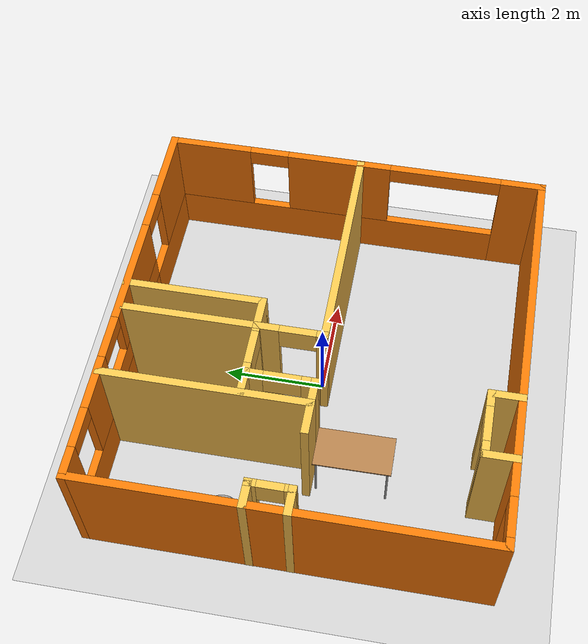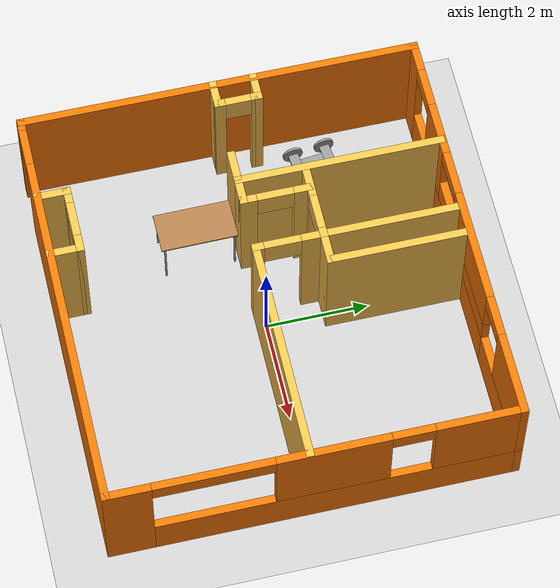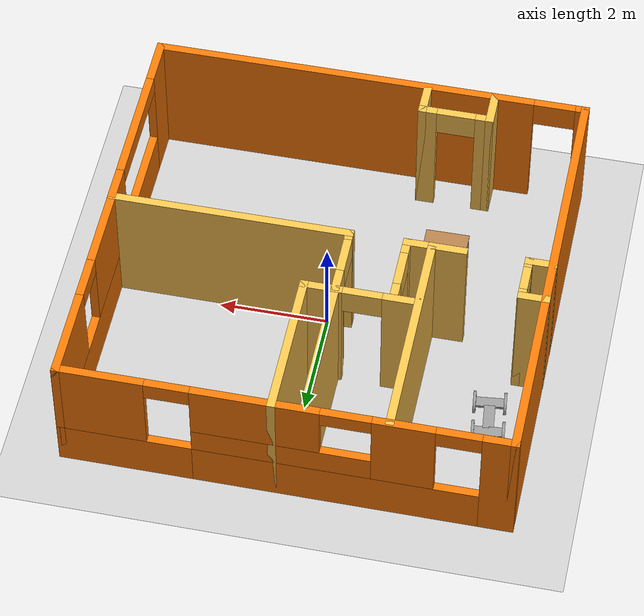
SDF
<sdf version="1.6">
 <world name="default">
  <model name="ground_plane">
   <static>1</static>
   <link name="link">
    <collision name="collision">
     <geometry><plane><normal>0 0 1</normal><size>100 100</size></plane></geometry>
     <surface><friction><ode><mu>100</mu><mu2>50</mu2></ode></friction></surface>
    </collision>
    <visual name="visual">
     <cast_shadows>0</cast_shadows>
     <geometry><plane><normal>0 0 1</normal><size>100 100</size></plane></geometry>
     <material>
      <script><uri>file://media/materials/scripts/gazebo.material</uri><name>Gazebo/Grey</name></script>
     </material>
    </visual>
   </link>
  </model>
  <model name="apartment2">
   <pose>-0.038299 0.0001 0 0 -0 0</pose>
   <link name="Wall_0">
    <pose>0.0015 3.8495 0 0 -0 0</pose>
    <visual name="Wall_0_Visual_0">
     <pose>-3.74544 0 1.25 0 -0 0</pose>
     <geometry><box><size>0.63713 0.15 2.5</size></box></geometry>
     <material>
      <script><uri>file://media/materials/scripts/gazebo.material</uri><name>Gazebo/Grey</name></script>
      <ambient>0.996078 0.47451 0.0196078 1</ambient>
     </material>
     <meta><layer>0</layer></meta>
    </visual>
    <collision name="Wall_0_Collision_0">
     <geometry><box><size>0.63713 0.15 2.5</size></box></geometry>
     <pose>-3.74544 0 1.25 0 -0 0</pose>
    </collision>
    <visual name="Wall_0_Visual_1">
     <pose>-0.89256 0 0.4445 0 -0 0</pose>
     <geometry><box><size>5.06862 0.15 0.889</size></box></geometry>
     <material>
      <script><uri>file://media/materials/scripts/gazebo.material</uri><name>Gazebo/Grey</name></script>
      <ambient>0.996078 0.47451 0.0196078 1</ambient>
     </material>
     <meta><layer>0</layer></meta>
    </visual>
    <collision name="Wall_0_Collision_1">
     <geometry><box><size>5.06862 0.15 0.889</size></box></geometry>
     <pose>-0.89256 0 0.4445 0 -0 0</pose>
    </collision>
    <visual name="Wall_0_Visual_2">
     <pose>2.85288 0 0.4445 0 -0 0</pose>
     <geometry><box><size>2.42225 0.15 0.889</size></box></geometry>
     <material>
      <script><uri>file://media/materials/scripts/gazebo.material</uri><name>Gazebo/Grey</name></script>
      <ambient>0.996078 0.47451 0.0196078 1</ambient>
     </material>
     <meta><layer>0</layer></meta>
    </visual>
    <collision name="Wall_0_Collision_2">
     <geometry><box><size>2.42225 0.15 0.889</size></box></geometry>
     <pose>2.85288 0 0.4445 0 -0 0</pose>
    </collision>
    <visual name="Wall_0_Visual_3">
     <pose>3.25287 0 1.6945 0 -0 0</pose>
     <geometry><box><size>1.62225 0.15 1.611</size></box></geometry>
     <material>
      <script><uri>file://media/materials/scripts/gazebo.material</uri><name>Gazebo/Grey</name></script>
      <ambient>0.996078 0.47451 0.0196078 1</ambient>
     </material>
     <meta><layer>0</layer></meta>
    </visual>
    <collision name="Wall_0_Collision_3">
     <geometry><box><size>1.62225 0.15 1.611</size></box></geometry>
     <pose>3.25287 0 1.6945 0 -0 0</pose>
    </collision>
    <visual name="Wall_0_Visual_4">
     <pose>-2.07636 0 1.6945 0 -0 0</pose>
     <geometry><box><size>1.10102 0.15 1.611</size></box></geometry>
     <material>
      <script><uri>file://media/materials/scripts/gazebo.material</uri><name>Gazebo/Grey</name></script>
      <ambient>0.996078 0.47451 0.0196078 1</ambient>
     </material>
     <meta><layer>0</layer></meta>
    </visual>
    <collision name="Wall_0_Collision_4">
     <geometry><box><size>1.10102 0.15 1.611</size></box></geometry>
     <pose>-2.07636 0 1.6945 0 -0 0</pose>
    </collision>
    <visual name="Wall_0_Visual_5">
     <pose>-2.07636 0 1.6945 0 -0 0</pose>
     <geometry><box><size>1.10102 0.15 1.611</size></box></geometry>
     <material>
      <script><uri>file://media/materials/scripts/gazebo.material</uri><name>Gazebo/Grey</name></script>
      <ambient>0.996078 0.47451 0.0196078 1</ambient>
     </material>
     <meta><layer>0</layer></meta>
    </visual>
    <collision name="Wall_0_Collision_5">
     <geometry><box><size>1.10102 0.15 1.611</size></box></geometry>
     <pose>-2.07636 0 1.6945 0 -0 0</pose>
    </collision>
    <visual name="Wall_0_Visual_6">
     <pose>0.057948 0 1.1445 0 -0 0</pose>
     <geometry><box><size>3.1676 0.15 0.511</size></box></geometry>
     <material>
      <script><uri>file://media/materials/scripts/gazebo.material</uri><name>Gazebo/Grey</name></script>
      <ambient>0.996078 0.47451 0.0196078 1</ambient>
     </material>
     <meta><layer>0</layer></meta>
    </visual>
    <collision name="Wall_0_Collision_6">
     <geometry><box><size>3.1676 0.15 0.511</size></box></geometry>
     <pose>0.057948 0 1.1445 0 -0 0</pose>
    </collision>
    <visual name="Wall_0_Visual_7">
     <pose>0.057948 0 1.1445 0 -0 0</pose>
     <geometry><box><size>3.1676 0.15 0.511</size></box></geometry>
     <material>
      <script><uri>file://media/materials/scripts/gazebo.material</uri><name>Gazebo/Grey</name></script>
      <ambient>0.996078 0.47451 0.0196078 1</ambient>
     </material>
     <meta><layer>0</layer></meta>
    </visual>
    <collision name="Wall_0_Collision_7">
     <geometry><box><size>3.1676 0.15 0.511</size></box></geometry>
     <pose>0.057948 0 1.1445 0 -0 0</pose>
    </collision>
    <visual name="Wall_0_Visual_8">
     <pose>0.507948 0 1.95 0 -0 0</pose>
     <geometry><box><size>2.2676 0.15 1.1</size></box></geometry>
     <material>
      <script><uri>file://media/materials/scripts/gazebo.material</uri><name>Gazebo/Grey</name></script>
      <ambient>0.996078 0.47451 0.0196078 1</ambient>
     </material>
     <meta><layer>0</layer></meta>
    </visual>
    <collision name="Wall_0_Collision_8">
     <geometry><box><size>2.2676 0.15 1.1</size></box></geometry>
     <pose>0.507948 0 1.95 0 -0 0</pose>
    </collision>
    <visual name="Wall_0_Visual_9">
     <pose>0.507948 0 1.95 0 -0 0</pose>
     <geometry><box><size>2.2676 0.15 1.1</size></box></geometry>
     <material>
      <script><uri>file://media/materials/scripts/gazebo.material</uri><name>Gazebo/Grey</name></script>
      <ambient>0.996078 0.47451 0.0196078 1</ambient>
     </material>
     <meta><layer>0</layer></meta>
    </visual>
    <collision name="Wall_0_Collision_9">
     <geometry><box><size>2.2676 0.15 1.1</size></box></geometry>
     <pose>0.507948 0 1.95 0 -0 0</pose>
    </collision>
    <visual name="Wall_0_Visual_10">
     <pose>2.04175 0 2.3295 0 -0 0</pose>
     <geometry><box><size>0.8 0.15 0.341</size></box></geometry>
     <material>
      <script><uri>file://media/materials/scripts/gazebo.material</uri><name>Gazebo/Grey</name></script>
      <ambient>0.996078 0.47451 0.0196078 1</ambient>
     </material>
     <meta><layer>0</layer></meta>
    </visual>
    <collision name="Wall_0_Collision_10">
     <geometry><box><size>0.8 0.15 0.341</size></box></geometry>
     <pose>2.04175 0 2.3295 0 -0 0</pose>
    </collision>
    <visual name="Wall_0_Visual_11">
     <pose>2.04175 0 2.3295 0 -0 0</pose>
     <geometry><box><size>0.8 0.15 0.341</size></box></geometry>
     <material>
      <script><uri>file://media/materials/scripts/gazebo.material</uri><name>Gazebo/Grey</name></script>
      <ambient>0.996078 0.47451 0.0196078 1</ambient>
     </material>
     <meta><layer>0</layer></meta>
    </visual>
    <collision name="Wall_0_Collision_11">
     <geometry><box><size>0.8 0.15 0.341</size></box></geometry>
     <pose>2.04175 0 2.3295 0 -0 0</pose>
    </collision>
    <visual name="Wall_0_Visual_12">
     <pose>-3.02687 0 2.3295 0 -0 0</pose>
     <geometry><box><size>0.8 0.15 0.341</size></box></geometry>
     <material>
      <script><uri>file://media/materials/scripts/gazebo.material</uri><name>Gazebo/Grey</name></script>
      <ambient>0.996078 0.47451 0.0196078 1</ambient>
     </material>
     <meta><layer>0</layer></meta>
    </visual>
    <collision name="Wall_0_Collision_12">
     <geometry><box><size>0.8 0.15 0.341</size></box></geometry>
     <pose>-3.02687 0 2.3295 0 -0 0</pose>
    </collision>
    <visual name="Wall_0_Visual_13">
     <pose>-1.07585 0 2.35 0 -0 0</pose>
     <geometry><box><size>0.9 0.15 0.3</size></box></geometry>
     <material>
      <script><uri>file://media/materials/scripts/gazebo.material</uri><name>Gazebo/Grey</name></script>
      <ambient>0.996078 0.47451 0.0196078 1</ambient>
     </material>
     <meta><layer>0</layer></meta>
    </visual>
    <collision name="Wall_0_Collision_13">
     <geometry><box><size>0.9 0.15 0.3</size></box></geometry>
     <pose>-1.07585 0 2.35 0 -0 0</pose>
    </collision>
    <visual name="Wall_0_Visual_14">
     <pose>-1.07585 0 2.35 0 -0 0</pose>
     <geometry><box><size>0.9 0.15 0.3</size></box></geometry>
     <material>
      <script><uri>file://media/materials/scripts/gazebo.material</uri><name>Gazebo/Grey</name></script>
      <ambient>0.996078 0.47451 0.0196078 1</ambient>
     </material>
     <meta><layer>0</layer></meta>
    </visual>
    <collision name="Wall_0_Collision_14">
     <geometry><box><size>0.9 0.15 0.3</size></box></geometry>
     <pose>-1.07585 0 2.35 0 -0 0</pose>
    </collision>
   </link>
   <link name="Wall_12">
    <collision name="Wall_12_Collision">
     <geometry><box><size>4.47 0.15 2.5</size></box></geometry>
     <pose>0 0 1.25 0 -0 0</pose>
    </collision>
    <visual name="Wall_12_Visual">
     <pose>0 0 1.25 0 -0 0</pose>
     <geometry><box><size>4.47 0.15 2.5</size></box></geometry>
     <material>
      <script><uri>file://media/materials/scripts/gazebo.material</uri><name>Gazebo/Grey</name></script>
      <ambient>1 0.764706 0.305882 1</ambient>
     </material>
     <meta><layer>0</layer></meta>
    </visual>
    <pose>1.8145 -0.1125 0 0 -0 3.14159</pose>
   </link>
   <link name="Wall_14">
    <pose>-0.3455 1.8125 0 0 -0 1.5708</pose>
    <visual name="Wall_14_Visual_0">
     <pose>-1.88475 0 1.25 0 -0 0</pose>
     <geometry><box><size>0.230491 0.15 2.5</size></box></geometry>
     <material>
      <script><uri>file://media/materials/scripts/gazebo.material</uri><name>Gazebo/Grey</name></script>
      <ambient>1 0.764706 0.305882 1</ambient>
     </material>
     <meta><layer>0</layer></meta>
    </visual>
    <collision name="Wall_14_Collision_0">
     <geometry><box><size>0.230491 0.15 2.5</size></box></geometry>
     <pose>-1.88475 0 1.25 0 -0 0</pose>
    </collision>
    <visual name="Wall_14_Visual_1">
     <pose>0.470745 0 1.25 0 -0 0</pose>
     <geometry><box><size>3.05851 0.15 2.5</size></box></geometry>
     <material>
      <script><uri>file://media/materials/scripts/gazebo.material</uri><name>Gazebo/Grey</name></script>
      <ambient>1 0.764706 0.305882 1</ambient>
     </material>
     <meta><layer>0</layer></meta>
    </visual>
    <collision name="Wall_14_Collision_1">
     <geometry><box><size>3.05851 0.15 2.5</size></box></geometry>
     <pose>0.470745 0 1.25 0 -0 0</pose>
    </collision>
    <visual name="Wall_14_Visual_2">
     <pose>-1.41401 0 2.25 0 -0 0</pose>
     <geometry><box><size>0.711 0.15 0.5</size></box></geometry>
     <material>
      <script><uri>file://media/materials/scripts/gazebo.material</uri><name>Gazebo/Grey</name></script>
      <ambient>1 0.764706 0.305882 1</ambient>
     </material>
     <meta><layer>0</layer></meta>
    </visual>
    <collision name="Wall_14_Collision_2">
     <geometry><box><size>0.711 0.15 0.5</size></box></geometry>
     <pose>-1.41401 0 2.25 0 -0 0</pose>
    </collision>
   </link>
   <link name="Wall_16">
    <collision name="Wall_16_Collision">
     <geometry><box><size>4.08 0.15 2.5</size></box></geometry>
     <pose>0 0 1.25 0 -0 0</pose>
    </collision>
    <visual name="Wall_16_Visual">
     <pose>0 0 1.25 0 -0 0</pose>
     <geometry><box><size>4.08 0.15 2.5</size></box></geometry>
     <material>
      <script><uri>file://media/materials/scripts/gazebo.material</uri><name>Gazebo/Grey</name></script>
      <ambient>1 0.764706 0.305882 1</ambient>
     </material>
     <meta><layer>0</layer></meta>
    </visual>
    <pose>-1.8285 1.8525 0 0 0 -1.5708</pose>
   </link>
   <link name="Wall_18">
    <collision name="Wall_18_Collision">
     <geometry><box><size>0.711 0.15 2.5</size></box></geometry>
     <pose>0 0 1.25 0 -0 0</pose>
    </collision>
    <visual name="Wall_18_Visual">
     <pose>0 0 1.25 0 -0 0</pose>
     <geometry><box><size>0.711 0.15 2.5</size></box></geometry>
     <material>
      <script><uri>file://media/materials/scripts/gazebo.material</uri><name>Gazebo/Grey</name></script>
      <ambient>1 0.764706 0.305882 1</ambient>
     </material>
     <meta><layer>0</layer></meta>
    </visual>
    <pose>-2.109 -0.1125 0 0 -0 3.14159</pose>
   </link>
   <link name="Wall_2">
    <collision name="Wall_2_Collision">
     <geometry><box><size>7.849 0.15 2.5</size></box></geometry>
     <pose>0 0 1.25 0 -0 0</pose>
    </collision>
    <visual name="Wall_2_Visual">
     <pose>0 0 1.25 0 -0 0</pose>
     <geometry><box><size>7.849 0.15 2.5</size></box></geometry>
     <material>
      <script><uri>file://media/materials/scripts/gazebo.material</uri><name>Gazebo/Grey</name></script>
      <ambient>0.996078 0.47451 0.0196078 1</ambient>
     </material>
     <meta><layer>0</layer></meta>
    </visual>
    <pose>-3.9875 0 0 0 0 -1.5708</pose>
   </link>
   <link name="Wall_20">
    <collision name="Wall_20_Collision">
     <geometry><box><size>0.58 0.15 2.5</size></box></geometry>
     <pose>0 0 1.25 0 -0 0</pose>
    </collision>
    <visual name="Wall_20_Visual">
     <pose>0 0 1.25 0 -0 0</pose>
     <geometry><box><size>0.58 0.15 2.5</size></box></geometry>
     <material>
      <script><uri>file://media/materials/scripts/gazebo.material</uri><name>Gazebo/Grey</name></script>
      <ambient>1 0.764706 0.305882 1</ambient>
     </material>
     <meta><layer>0</layer></meta>
    </visual>
    <pose>-3.7755 -0.1125 0 0 -0 0</pose>
   </link>
   <link name="Wall_22">
    <pose>-3.5605 0.282 0 0 -0 1.5708</pose>
    <visual name="Wall_22_Visual_0">
     <pose>-0.361845 0 1.25 0 -0 0</pose>
     <geometry><box><size>0.21531 0.15 2.5</size></box></geometry>
     <material>
      <script><uri>file://media/materials/scripts/gazebo.material</uri><name>Gazebo/Grey</name></script>
      <ambient>1 0.764706 0.305882 1</ambient>
     </material>
     <meta><layer>0</layer></meta>
    </visual>
    <collision name="Wall_22_Collision_0">
     <geometry><box><size>0.21531 0.15 2.5</size></box></geometry>
     <pose>-0.361845 0 1.25 0 -0 0</pose>
    </collision>
    <visual name="Wall_22_Visual_1">
     <pose>0.357655 0 1.25 0 -0 0</pose>
     <geometry><box><size>0.22369 0.15 2.5</size></box></geometry>
     <material>
      <script><uri>file://media/materials/scripts/gazebo.material</uri><name>Gazebo/Grey</name></script>
      <ambient>1 0.764706 0.305882 1</ambient>
     </material>
     <meta><layer>0</layer></meta>
    </visual>
    <collision name="Wall_22_Collision_1">
     <geometry><box><size>0.22369 0.15 2.5</size></box></geometry>
     <pose>0.357655 0 1.25 0 -0 0</pose>
    </collision>
    <visual name="Wall_22_Visual_2">
     <pose>-0.00419 0 2.25 0 -0 0</pose>
     <geometry><box><size>0.5 0.15 0.5</size></box></geometry>
     <material>
      <script><uri>file://media/materials/scripts/gazebo.material</uri><name>Gazebo/Grey</name></script>
      <ambient>1 0.764706 0.305882 1</ambient>
     </material>
     <meta><layer>0</layer></meta>
    </visual>
    <collision name="Wall_22_Collision_2">
     <geometry><box><size>0.5 0.15 0.5</size></box></geometry>
     <pose>-0.00419 0 2.25 0 -0 0</pose>
    </collision>
   </link>
   <link name="Wall_24">
    <collision name="Wall_24_Collision">
     <geometry><box><size>0.58 0.15 2.5</size></box></geometry>
     <pose>0 0 1.25 0 -0 0</pose>
    </collision>
    <visual name="Wall_24_Visual">
     <pose>0 0 1.25 0 -0 0</pose>
     <geometry><box><size>0.58 0.15 2.5</size></box></geometry>
     <material>
      <script><uri>file://media/materials/scripts/gazebo.material</uri><name>Gazebo/Grey</name></script>
      <ambient>1 0.764706 0.305882 1</ambient>
     </material>
     <meta><layer>0</layer></meta>
    </visual>
    <pose>-3.7755 0.6765 0 0 -0 3.14159</pose>
   </link>
   <link name="Wall_26">
    <pose>-1.072 1.1825 0 0 -0 0</pose>
    <visual name="Wall_26_Visual_0">
     <pose>-0.458995 0 1.25 0 -0 0</pose>
     <geometry><box><size>0.685009 0.15 2.5</size></box></geometry>
     <material>
      <script><uri>file://media/materials/scripts/gazebo.material</uri><name>Gazebo/Grey</name></script>
      <ambient>1 0.764706 0.305882 1</ambient>
     </material>
     <meta><layer>0</layer></meta>
    </visual>
    <collision name="Wall_26_Collision_0">
     <geometry><box><size>0.685009 0.15 2.5</size></box></geometry>
     <pose>-0.458995 0 1.25 0 -0 0</pose>
    </collision>
    <visual name="Wall_26_Visual_1">
     <pose>0.698005 0 1.25 0 -0 0</pose>
     <geometry><box><size>0.206991 0.15 2.5</size></box></geometry>
     <material>
      <script><uri>file://media/materials/scripts/gazebo.material</uri><name>Gazebo/Grey</name></script>
      <ambient>1 0.764706 0.305882 1</ambient>
     </material>
     <meta><layer>0</layer></meta>
    </visual>
    <collision name="Wall_26_Collision_1">
     <geometry><box><size>0.206991 0.15 2.5</size></box></geometry>
     <pose>0.698005 0 1.25 0 -0 0</pose>
    </collision>
    <visual name="Wall_26_Visual_2">
     <pose>0.239009 0 2.25 0 -0 0</pose>
     <geometry><box><size>0.711 0.15 0.5</size></box></geometry>
     <material>
      <script><uri>file://media/materials/scripts/gazebo.material</uri><name>Gazebo/Grey</name></script>
      <ambient>1 0.764706 0.305882 1</ambient>
     </material>
     <meta><layer>0</layer></meta>
    </visual>
    <collision name="Wall_26_Collision_2">
     <geometry><box><size>0.711 0.15 0.5</size></box></geometry>
     <pose>0.239009 0 2.25 0 -0 0</pose>
    </collision>
   </link>
   <link name="Wall_39">
    <collision name="Wall_39_Collision">
     <geometry><box><size>0.711 0.15 2.5</size></box></geometry>
     <pose>0 0 1.25 0 -0 0</pose>
    </collision>
    <visual name="Wall_39_Visual">
     <pose>0 0 1.25 0 -0 0</pose>
     <geometry><box><size>0.711 0.15 2.5</size></box></geometry>
     <material>
      <script><uri>file://media/materials/scripts/gazebo.material</uri><name>Gazebo/Grey</name></script>
      <ambient>1 0.764706 0.305882 1</ambient>
     </material>
     <meta><layer>0</layer></meta>
    </visual>
    <pose>-0.065 1.1825 0 0 -0 0</pose>
   </link>
   <link name="Wall_4">
    <pose>0.0015 -3.8495 0 0 -0 0</pose>
    <visual name="Wall_4_Visual_0">
     <pose>-3.93707 0 1.25 0 -0 0</pose>
     <geometry><box><size>0.253859 0.15 2.5</size></box></geometry>
     <material>
      <script><uri>file://media/materials/scripts/gazebo.material</uri><name>Gazebo/Grey</name></script>
      <ambient>0.996078 0.47451 0.0196078 1</ambient>
     </material>
     <meta><layer>0</layer></meta>
    </visual>
    <collision name="Wall_4_Collision_0">
     <geometry><box><size>0.253859 0.15 2.5</size></box></geometry>
     <pose>-3.93707 0 1.25 0 -0 0</pose>
    </collision>
    <visual name="Wall_4_Visual_1">
     <pose>0.507929 0 1.25 0 -0 0</pose>
     <geometry><box><size>7.11214 0.15 2.5</size></box></geometry>
     <material>
      <script><uri>file://media/materials/scripts/gazebo.material</uri><name>Gazebo/Grey</name></script>
      <ambient>0.996078 0.47451 0.0196078 1</ambient>
     </material>
     <meta><layer>0</layer></meta>
    </visual>
    <collision name="Wall_4_Collision_1">
     <geometry><box><size>7.11214 0.15 2.5</size></box></geometry>
     <pose>0.507929 0 1.25 0 -0 0</pose>
    </collision>
    <visual name="Wall_4_Visual_2">
     <pose>-3.42914 0 2.25 0 -0 0</pose>
     <geometry><box><size>0.762 0.15 0.5</size></box></geometry>
     <material>
      <script><uri>file://media/materials/scripts/gazebo.material</uri><name>Gazebo/Grey</name></script>
      <ambient>0.996078 0.47451 0.0196078 1</ambient>
     </material>
     <meta><layer>0</layer></meta>
    </visual>
    <collision name="Wall_4_Collision_2">
     <geometry><box><size>0.762 0.15 0.5</size></box></geometry>
     <pose>-3.42914 0 2.25 0 -0 0</pose>
    </collision>
   </link>
   <link name="Wall_41">
    <collision name="Wall_41_Collision">
     <geometry><box><size>2.817 0.15 2.5</size></box></geometry>
     <pose>0 0 1.25 0 -0 0</pose>
    </collision>
    <visual name="Wall_41_Visual">
     <pose>0 0 1.25 0 -0 0</pose>
     <geometry><box><size>2.817 0.15 2.5</size></box></geometry>
     <material>
      <script><uri>file://media/materials/scripts/gazebo.material</uri><name>Gazebo/Grey</name></script>
      <ambient>1 0.764706 0.305882 1</ambient>
     </material>
     <meta><layer>0</layer></meta>
    </visual>
    <pose>0.2155 2.516 0 0 -0 1.5708</pose>
   </link>
   <link name="Wall_43">
    <collision name="Wall_43_Collision">
     <geometry><box><size>0.6 0.15 2.5</size></box></geometry>
     <pose>0 0 1.25 0 -0 0</pose>
    </collision>
    <visual name="Wall_43_Visual">
     <pose>0 0 1.25 0 -0 0</pose>
     <geometry><box><size>0.6 0.15 2.5</size></box></geometry>
     <material>
      <script><uri>file://media/materials/scripts/gazebo.material</uri><name>Gazebo/Grey</name></script>
      <ambient>1 0.764706 0.305882 1</ambient>
     </material>
     <meta><layer>0</layer></meta>
    </visual>
    <pose>-1.6035 -0.1125 0 0 -0 0</pose>
   </link>
   <link name="Wall_46">
    <pose>-1.3785 0.535 0 0 -0 1.5708</pose>
    <visual name="Wall_46_Visual_0">
     <pose>-0.556971 0 1.25 0 -0 0</pose>
     <geometry><box><size>0.331058 0.15 2.5</size></box></geometry>
     <material>
      <script><uri>file://media/materials/scripts/gazebo.material</uri><name>Gazebo/Grey</name></script>
      <ambient>1 0.764706 0.305882 1</ambient>
     </material>
     <meta><layer>0</layer></meta>
    </visual>
    <collision name="Wall_46_Collision_0">
     <geometry><box><size>0.331058 0.15 2.5</size></box></geometry>
     <pose>-0.556971 0 1.25 0 -0 0</pose>
    </collision>
    <visual name="Wall_46_Visual_1">
     <pose>0.521029 0 1.25 0 -0 0</pose>
     <geometry><box><size>0.402942 0.15 2.5</size></box></geometry>
     <material>
      <script><uri>file://media/materials/scripts/gazebo.material</uri><name>Gazebo/Grey</name></script>
      <ambient>1 0.764706 0.305882 1</ambient>
     </material>
     <meta><layer>0</layer></meta>
    </visual>
    <collision name="Wall_46_Collision_1">
     <geometry><box><size>0.402942 0.15 2.5</size></box></geometry>
     <pose>0.521029 0 1.25 0 -0 0</pose>
    </collision>
    <visual name="Wall_46_Visual_2">
     <pose>-0.035942 0 2.25 0 -0 0</pose>
     <geometry><box><size>0.711 0.15 0.5</size></box></geometry>
     <material>
      <script><uri>file://media/materials/scripts/gazebo.material</uri><name>Gazebo/Grey</name></script>
      <ambient>1 0.764706 0.305882 1</ambient>
     </material>
     <meta><layer>0</layer></meta>
    </visual>
    <collision name="Wall_46_Collision_2">
     <geometry><box><size>0.711 0.15 0.5</size></box></geometry>
     <pose>-0.035942 0 2.25 0 -0 0</pose>
    </collision>
   </link>
   <link name="Wall_51">
    <collision name="Wall_51_Collision">
     <geometry><box><size>0.711 0.15 2.5</size></box></geometry>
     <pose>0 0 1.25 0 -0 0</pose>
    </collision>
    <visual name="Wall_51_Visual">
     <pose>0 0 1.25 0 -0 0</pose>
     <geometry><box><size>0.711 0.15 2.5</size></box></geometry>
     <material>
      <script><uri>file://media/materials/scripts/gazebo.material</uri><name>Gazebo/Grey</name></script>
      <ambient>1 0.764706 0.305882 1</ambient>
     </material>
     <meta><layer>0</layer></meta>
    </visual>
    <pose>-2.3175 -3.565 0 0 -0 1.5708</pose>
   </link>
   <link name="Wall_53">
    <pose>-1.694 -3.2845 0 0 -0 0</pose>
    <visual name="Wall_53_Visual_0">
     <pose>-0.528937 0 1.25 0 -0 0</pose>
     <geometry><box><size>0.339126 0.15 2.5</size></box></geometry>
     <material>
      <script><uri>file://media/materials/scripts/gazebo.material</uri><name>Gazebo/Grey</name></script>
      <ambient>1 0.764706 0.305882 1</ambient>
     </material>
     <meta><layer>0</layer></meta>
    </visual>
    <collision name="Wall_53_Collision_0">
     <geometry><box><size>0.339126 0.15 2.5</size></box></geometry>
     <pose>-0.528937 0 1.25 0 -0 0</pose>
    </collision>
    <visual name="Wall_53_Visual_1">
     <pose>0.525063 0 1.25 0 -0 0</pose>
     <geometry><box><size>0.346874 0.15 2.5</size></box></geometry>
     <material>
      <script><uri>file://media/materials/scripts/gazebo.material</uri><name>Gazebo/Grey</name></script>
      <ambient>1 0.764706 0.305882 1</ambient>
     </material>
     <meta><layer>0</layer></meta>
    </visual>
    <collision name="Wall_53_Collision_1">
     <geometry><box><size>0.346874 0.15 2.5</size></box></geometry>
     <pose>0.525063 0 1.25 0 -0 0</pose>
    </collision>
    <visual name="Wall_53_Visual_2">
     <pose>-0.003874 0 2.25 0 -0 0</pose>
     <geometry><box><size>0.711 0.15 0.5</size></box></geometry>
     <material>
      <script><uri>file://media/materials/scripts/gazebo.material</uri><name>Gazebo/Grey</name></script>
      <ambient>1 0.764706 0.305882 1</ambient>
     </material>
     <meta><layer>0</layer></meta>
    </visual>
    <collision name="Wall_53_Collision_2">
     <geometry><box><size>0.711 0.15 0.5</size></box></geometry>
     <pose>-0.003874 0 2.25 0 -0 0</pose>
    </collision>
   </link>
   <link name="Wall_57">
    <collision name="Wall_57_Collision">
     <geometry><box><size>0.711 0.15 2.5</size></box></geometry>
     <pose>0 0 1.25 0 -0 0</pose>
    </collision>
    <visual name="Wall_57_Visual">
     <pose>0 0 1.25 0 -0 0</pose>
     <geometry><box><size>0.711 0.15 2.5</size></box></geometry>
     <material>
      <script><uri>file://media/materials/scripts/gazebo.material</uri><name>Gazebo/Grey</name></script>
      <ambient>1 0.764706 0.305882 1</ambient>
     </material>
     <meta><layer>0</layer></meta>
    </visual>
    <pose>-1.0705 -3.565 0 0 0 -1.5708</pose>
   </link>
   <link name="Wall_8">
    <pose>3.9905 0 0 0 -0 1.5708</pose>
    <visual name="Wall_8_Visual_0">
     <pose>-3.46767 0 1.25 0 -0 0</pose>
     <geometry><box><size>0.913657 0.15 2.5</size></box></geometry>
     <material>
      <script><uri>file://media/materials/scripts/gazebo.material</uri><name>Gazebo/Grey</name></script>
      <ambient>0.996078 0.47451 0.0196078 1</ambient>
     </material>
     <meta><layer>0</layer></meta>
    </visual>
    <collision name="Wall_8_Collision_0">
     <geometry><box><size>0.913657 0.15 2.5</size></box></geometry>
     <pose>-3.46767 0 1.25 0 -0 0</pose>
    </collision>
    <visual name="Wall_8_Visual_1">
     <pose>0.456829 0 0.4445 0 -0 0</pose>
     <geometry><box><size>6.93534 0.15 0.889</size></box></geometry>
     <material>
      <script><uri>file://media/materials/scripts/gazebo.material</uri><name>Gazebo/Grey</name></script>
      <ambient>0.996078 0.47451 0.0196078 1</ambient>
     </material>
     <meta><layer>0</layer></meta>
    </visual>
    <collision name="Wall_8_Collision_1">
     <geometry><box><size>6.93534 0.15 0.889</size></box></geometry>
     <pose>0.456829 0 0.4445 0 -0 0</pose>
    </collision>
    <visual name="Wall_8_Visual_2">
     <pose>0.334299 0 1.6945 0 -0 0</pose>
     <geometry><box><size>2.14428 0.15 1.611</size></box></geometry>
     <material>
      <script><uri>file://media/materials/scripts/gazebo.material</uri><name>Gazebo/Grey</name></script>
      <ambient>0.996078 0.47451 0.0196078 1</ambient>
     </material>
     <meta><layer>0</layer></meta>
    </visual>
    <collision name="Wall_8_Collision_2">
     <geometry><box><size>2.14428 0.15 1.611</size></box></geometry>
     <pose>0.334299 0 1.6945 0 -0 0</pose>
    </collision>
    <visual name="Wall_8_Visual_3">
     <pose>3.06547 0 1.6945 0 -0 0</pose>
     <geometry><box><size>1.71806 0.15 1.611</size></box></geometry>
     <material>
      <script><uri>file://media/materials/scripts/gazebo.material</uri><name>Gazebo/Grey</name></script>
      <ambient>0.996078 0.47451 0.0196078 1</ambient>
     </material>
     <meta><layer>0</layer></meta>
    </visual>
    <collision name="Wall_8_Collision_3">
     <geometry><box><size>1.71806 0.15 1.611</size></box></geometry>
     <pose>3.06547 0 1.6945 0 -0 0</pose>
    </collision>
    <visual name="Wall_8_Visual_4">
     <pose>-1.87434 0 2.3295 0 -0 0</pose>
     <geometry><box><size>2.273 0.15 0.341</size></box></geometry>
     <material>
      <script><uri>file://media/materials/scripts/gazebo.material</uri><name>Gazebo/Grey</name></script>
      <ambient>0.996078 0.47451 0.0196078 1</ambient>
     </material>
     <meta><layer>0</layer></meta>
    </visual>
    <collision name="Wall_8_Collision_4">
     <geometry><box><size>2.273 0.15 0.341</size></box></geometry>
     <pose>-1.87434 0 2.3295 0 -0 0</pose>
    </collision>
    <visual name="Wall_8_Visual_5">
     <pose>1.80644 0 2.3295 0 -0 0</pose>
     <geometry><box><size>0.8 0.15 0.341</size></box></geometry>
     <material>
      <script><uri>file://media/materials/scripts/gazebo.material</uri><name>Gazebo/Grey</name></script>
      <ambient>0.996078 0.47451 0.0196078 1</ambient>
     </material>
     <meta><layer>0</layer></meta>
    </visual>
    <collision name="Wall_8_Collision_5">
     <geometry><box><size>0.8 0.15 0.341</size></box></geometry>
     <pose>1.80644 0 2.3295 0 -0 0</pose>
    </collision>
   </link>
   <static>1</static>
  </model>
  <model name="rccar-no-friction">
   <link name="link_0">
    <pose>-0 0 0.2 0 -0 0</pose>
    <inertial>
     <mass>1</mass>
     <inertia>
      <ixx>0.166667</ixx>
      <ixy>0</ixy>
      <ixz>0</ixz>
      <iyy>0.166667</iyy>
      <iyz>0</iyz>
      <izz>0.166667</izz>
     </inertia>
    </inertial>
    <visual name="visual">
     <geometry><box><size>0.5 0.2 0.05</size></box></geometry>
     <material>
      <lighting>1</lighting>
      <script><uri>file://media/materials/scripts/gazebo.material</uri><name>Gazebo/Grey</name></script>
      <ambient>0.3 0.3 0.3 1</ambient>
      <diffuse>0.7 0.7 0.7 1</diffuse>
      <specular>0.01 0.01 0.01 1</specular>
      <emissive>0 0 0 1</emissive>
      <shader type="vertex"><normal_map>__default__</normal_map></shader>
     </material>
    </visual>
    <collision name="collision">
     <geometry><box><size>0.5 0.2 0.05</size></box></geometry>
     <surface>
      <friction>
       <ode><mu>1</mu><mu2>1</mu2><fdir1>0 0 0</fdir1><slip1>0</slip1><slip2>0</slip2></ode>
       <torsional>
        <coefficient>1</coefficient>
        <patch_radius>0</patch_radius>
        <surface_radius>0</surface_radius>
        <use_patch_radius>1</use_patch_radius>
        <ode><slip>0</slip></ode>
       </torsional>
      </friction>
      <bounce><restitution_coefficient>0</restitution_coefficient><threshold>1e+06</threshold></bounce>
      <contact>
       <collide_without_contact>0</collide_without_contact>
       <collide_without_contact_bitmask>1</collide_without_contact_bitmask>
       <collide_bitmask>1</collide_bitmask>
       <ode>
        <soft_cfm>0</soft_cfm>
        <soft_erp>0.2</soft_erp>
        <kp>1e+13</kp>
        <kd>1</kd>
        <max_vel>0.01</max_vel>
        <min_depth>0</min_depth>
       </ode>
       <bullet>
        <split_impulse>1</split_impulse>
        <split_impulse_penetration_threshold>-0.01</split_impulse_penetration_threshold>
        <soft_cfm>0</soft_cfm>
        <soft_erp>0.2</soft_erp>
        <kp>1e+13</kp>
        <kd>1</kd>
       </bullet>
      </contact>
     </surface>
    </collision>
   </link>
   <link name="link_0_0">
    <pose>-0 -0.322937 0.2 0 -0 0</pose>
    <inertial>
     <mass>1</mass>
     <inertia>
      <ixx>0.166667</ixx>
      <ixy>0</ixy>
      <ixz>0</ixz>
      <iyy>0.166667</iyy>
      <iyz>0</iyz>
      <izz>0.166667</izz>
     </inertia>
    </inertial>
    <visual name="visual">
     <geometry><box><size>0.2 0.5 0.05</size></box></geometry>
     <material>
      <lighting>1</lighting>
      <script><uri>file://media/materials/scripts/gazebo.material</uri><name>Gazebo/Grey</name></script>
      <ambient>0.3 0.3 0.3 1</ambient>
      <diffuse>0.7 0.7 0.7 1</diffuse>
      <specular>0.01 0.01 0.01 1</specular>
      <emissive>0 0 0 1</emissive>
      <shader type="vertex"><normal_map>__default__</normal_map></shader>
     </material>
    </visual>
    <collision name="collision">
     <geometry><box><size>0.2 0.5 0.05</size></box></geometry>
     <surface>
      <friction>
       <ode><mu>1</mu><mu2>1</mu2><fdir1>0 0 0</fdir1><slip1>0</slip1><slip2>0</slip2></ode>
       <torsional>
        <coefficient>1</coefficient>
        <patch_radius>0</patch_radius>
        <surface_radius>0</surface_radius>
        <use_patch_radius>1</use_patch_radius>
        <ode><slip>0</slip></ode>
       </torsional>
      </friction>
      <bounce><restitution_coefficient>0</restitution_coefficient><threshold>1e+06</threshold></bounce>
      <contact>
       <collide_without_contact>0</collide_without_contact>
       <collide_without_contact_bitmask>1</collide_without_contact_bitmask>
       <collide_bitmask>1</collide_bitmask>
       <ode>
        <soft_cfm>0</soft_cfm>
        <soft_erp>0.2</soft_erp>
        <kp>1e+13</kp>
        <kd>1</kd>
        <max_vel>0.01</max_vel>
        <min_depth>0</min_depth>
       </ode>
       <bullet>
        <split_impulse>1</split_impulse>
        <split_impulse_penetration_threshold>-0.01</split_impulse_penetration_threshold>
        <soft_cfm>0</soft_cfm>
        <soft_erp>0.2</soft_erp>
        <kp>1e+13</kp>
        <kd>1</kd>
       </bullet>
      </contact>
     </surface>
    </collision>
   </link>
   <link name="link_0_clone">
    <pose>0.002934 -0.646886 0.2 0 -0 0</pose>
    <inertial>
     <mass>1</mass>
     <inertia>
      <ixx>0.166667</ixx>
      <ixy>0</ixy>
      <ixz>0</ixz>
      <iyy>0.166667</iyy>
      <iyz>0</iyz>
      <izz>0.166667</izz>
     </inertia>
    </inertial>
    <visual name="visual">
     <geometry><box><size>0.5 0.2 0.05</size></box></geometry>
     <material>
      <lighting>1</lighting>
      <script><uri>file://media/materials/scripts/gazebo.material</uri><name>Gazebo/Grey</name></script>
      <ambient>0.3 0.3 0.3 1</ambient>
      <diffuse>0.7 0.7 0.7 1</diffuse>
      <specular>0.01 0.01 0.01 1</specular>
      <emissive>0 0 0 1</emissive>
      <shader type="vertex"><normal_map>__default__</normal_map></shader>
     </material>
    </visual>
    <collision name="collision">
     <geometry><box><size>0.5 0.2 0.05</size></box></geometry>
     <surface>
      <friction>
       <ode><mu>1</mu><mu2>1</mu2><fdir1>0 0 0</fdir1><slip1>0</slip1><slip2>0</slip2></ode>
       <torsional>
        <coefficient>1</coefficient>
        <patch_radius>0</patch_radius>
        <surface_radius>0</surface_radius>
        <use_patch_radius>1</use_patch_radius>
        <ode><slip>0</slip></ode>
       </torsional>
      </friction>
      <bounce><restitution_coefficient>0</restitution_coefficient><threshold>1e+06</threshold></bounce>
      <contact>
       <collide_without_contact>0</collide_without_contact>
       <collide_without_contact_bitmask>1</collide_without_contact_bitmask>
       <collide_bitmask>1</collide_bitmask>
       <ode>
        <soft_cfm>0</soft_cfm>
        <soft_erp>0.2</soft_erp>
        <kp>1e+13</kp>
        <kd>1</kd>
        <max_vel>0.01</max_vel>
        <min_depth>0</min_depth>
       </ode>
       <bullet>
        <split_impulse>1</split_impulse>
        <split_impulse_penetration_threshold>-0.01</split_impulse_penetration_threshold>
        <soft_cfm>0</soft_cfm>
        <soft_erp>0.2</soft_erp>
        <kp>1e+13</kp>
        <kd>1</kd>
       </bullet>
      </contact>
     </surface>
    </collision>
   </link>
   <link name="link_1">
    <pose>0.275001 -0 0.2 1.5708 -0 1.5708</pose>
    <inertial>
     <mass>1</mass>
     <inertia><ixx>0.145833</ixx><ixy>0</ixy><ixz>0</ixz><iyy>0.145833</iyy><iyz>0</iyz><izz>0.125</izz></inertia>
    </inertial>
    <visual name="visual">
     <geometry><cylinder><radius>0.2</radius><length>0.05</length></cylinder></geometry>
     <material>
      <lighting>1</lighting>
      <script><uri>file://media/materials/scripts/gazebo.material</uri><name>Gazebo/Grey</name></script>
      <ambient>0.3 0.3 0.3 1</ambient>
      <diffuse>0.7 0.7 0.7 1</diffuse>
      <specular>0.01 0.01 0.01 1</specular>
      <emissive>0 0 0 1</emissive>
      <shader type="vertex"><normal_map>__default__</normal_map></shader>
     </material>
    </visual>
    <collision name="collision">
     <geometry><cylinder><radius>0.2</radius><length>0.05</length></cylinder></geometry>
     <surface>
      <friction>
       <ode><mu>1</mu><mu2>1</mu2><fdir1>0 0 0</fdir1><slip1>0</slip1><slip2>0</slip2></ode>
       <torsional>
        <coefficient>1</coefficient>
        <patch_radius>0</patch_radius>
        <surface_radius>0</surface_radius>
        <use_patch_radius>1</use_patch_radius>
        <ode><slip>0</slip></ode>
       </torsional>
      </friction>
      <bounce><restitution_coefficient>0</restitution_coefficient><threshold>1e+06</threshold></bounce>
      <contact>
       <collide_without_contact>0</collide_without_contact>
       <collide_without_contact_bitmask>1</collide_without_contact_bitmask>
       <collide_bitmask>1</collide_bitmask>
       <ode>
        <soft_cfm>0</soft_cfm>
        <soft_erp>0.2</soft_erp>
        <kp>1e+13</kp>
        <kd>1</kd>
        <max_vel>0.01</max_vel>
        <min_depth>0</min_depth>
       </ode>
       <bullet>
        <split_impulse>1</split_impulse>
        <split_impulse_penetration_threshold>-0.01</split_impulse_penetration_threshold>
        <soft_cfm>0</soft_cfm>
        <soft_erp>0.2</soft_erp>
        <kp>1e+13</kp>
        <kd>1</kd>
       </bullet>
      </contact>
     </surface>
    </collision>
   </link>
   <link name="link_1_clone">
    <pose>-0.275001 0 0.2 -1.5708 0 1.5708</pose>
    <inertial>
     <mass>1</mass>
     <inertia><ixx>0.145833</ixx><ixy>0</ixy><ixz>0</ixz><iyy>0.145833</iyy><iyz>0</iyz><izz>0.125</izz></inertia>
    </inertial>
    <visual name="visual">
     <geometry><cylinder><radius>0.2</radius><length>0.05</length></cylinder></geometry>
     <material>
      <lighting>1</lighting>
      <script><uri>file://media/materials/scripts/gazebo.material</uri><name>Gazebo/Grey</name></script>
      <ambient>0.3 0.3 0.3 1</ambient>
      <diffuse>0.7 0.7 0.7 1</diffuse>
      <specular>0.01 0.01 0.01 1</specular>
      <emissive>0 0 0 1</emissive>
      <shader type="vertex"><normal_map>__default__</normal_map></shader>
     </material>
    </visual>
    <collision name="collision">
     <geometry><cylinder><radius>0.2</radius><length>0.05</length></cylinder></geometry>
     <surface>
      <friction>
       <ode><mu>1</mu><mu2>1</mu2><fdir1>0 0 0</fdir1><slip1>0</slip1><slip2>0</slip2></ode>
       <torsional>
        <coefficient>1</coefficient>
        <patch_radius>0</patch_radius>
        <surface_radius>0</surface_radius>
        <use_patch_radius>1</use_patch_radius>
        <ode><slip>0</slip></ode>
       </torsional>
      </friction>
      <bounce><restitution_coefficient>0</restitution_coefficient><threshold>1e+06</threshold></bounce>
      <contact>
       <collide_without_contact>0</collide_without_contact>
       <collide_without_contact_bitmask>1</collide_without_contact_bitmask>
       <collide_bitmask>1</collide_bitmask>
       <ode>
        <soft_cfm>0</soft_cfm>
        <soft_erp>0.2</soft_erp>
        <kp>1e+13</kp>
        <kd>1</kd>
        <max_vel>0.01</max_vel>
        <min_depth>0</min_depth>
       </ode>
       <bullet>
        <split_impulse>1</split_impulse>
        <split_impulse_penetration_threshold>-0.01</split_impulse_penetration_threshold>
        <soft_cfm>0</soft_cfm>
        <soft_erp>0.2</soft_erp>
        <kp>1e+13</kp>
        <kd>1</kd>
       </bullet>
      </contact>
     </surface>
    </collision>
   </link>
   <link name="link_1_clone_clone">
    <pose>-0.272068 -0.646886 0.2 -1.5708 0 1.5708</pose>
    <inertial>
     <mass>1</mass>
     <inertia><ixx>0.145833</ixx><ixy>0</ixy><ixz>0</ixz><iyy>0.145833</iyy><iyz>0</iyz><izz>0.125</izz></inertia>
    </inertial>
    <visual name="visual">
     <geometry><cylinder><radius>0.2</radius><length>0.05</length></cylinder></geometry>
     <material>
      <lighting>1</lighting>
      <script><uri>file://media/materials/scripts/gazebo.material</uri><name>Gazebo/Grey</name></script>
      <ambient>0.3 0.3 0.3 1</ambient>
      <diffuse>0.7 0.7 0.7 1</diffuse>
      <specular>0.01 0.01 0.01 1</specular>
      <emissive>0 0 0 1</emissive>
      <shader type="vertex"><normal_map>__default__</normal_map></shader>
     </material>
    </visual>
    <collision name="collision">
     <geometry><cylinder><radius>0.2</radius><length>0.05</length></cylinder></geometry>
     <surface>
      <friction>
       <ode><mu>1</mu><mu2>1</mu2><fdir1>0 0 0</fdir1><slip1>0</slip1><slip2>0</slip2></ode>
       <torsional>
        <coefficient>1</coefficient>
        <patch_radius>0</patch_radius>
        <surface_radius>0</surface_radius>
        <use_patch_radius>1</use_patch_radius>
        <ode><slip>0</slip></ode>
       </torsional>
      </friction>
      <bounce><restitution_coefficient>0</restitution_coefficient><threshold>1e+06</threshold></bounce>
      <contact>
       <collide_without_contact>0</collide_without_contact>
       <collide_without_contact_bitmask>1</collide_without_contact_bitmask>
       <collide_bitmask>1</collide_bitmask>
       <ode>
        <soft_cfm>0</soft_cfm>
        <soft_erp>0.2</soft_erp>
        <kp>1e+13</kp>
        <kd>1</kd>
        <max_vel>0.01</max_vel>
        <min_depth>0</min_depth>
       </ode>
       <bullet>
        <split_impulse>1</split_impulse>
        <split_impulse_penetration_threshold>-0.01</split_impulse_penetration_threshold>
        <soft_cfm>0</soft_cfm>
        <soft_erp>0.2</soft_erp>
        <kp>1e+13</kp>
        <kd>1</kd>
       </bullet>
      </contact>
     </surface>
    </collision>
   </link>
   <link name="link_1_clone_clone_0">
    <pose>0.277936 -0.646886 0.2 -1.5708 0 1.5708</pose>
    <inertial>
     <mass>1</mass>
     <inertia><ixx>0.145833</ixx><ixy>0</ixy><ixz>0</ixz><iyy>0.145833</iyy><iyz>0</iyz><izz>0.125</izz></inertia>
    </inertial>
    <visual name="visual">
     <geometry><cylinder><radius>0.2</radius><length>0.05</length></cylinder></geometry>
     <material>
      <lighting>1</lighting>
      <script><uri>file://media/materials/scripts/gazebo.material</uri><name>Gazebo/Grey</name></script>
      <ambient>0.3 0.3 0.3 1</ambient>
      <diffuse>0.7 0.7 0.7 1</diffuse>
      <specular>0.01 0.01 0.01 1</specular>
      <emissive>0 0 0 1</emissive>
      <shader type="vertex"><normal_map>__default__</normal_map></shader>
     </material>
    </visual>
    <collision name="collision">
     <geometry><cylinder><radius>0.2</radius><length>0.05</length></cylinder></geometry>
     <surface>
      <friction>
       <ode><mu>1</mu><mu2>1</mu2><fdir1>0 0 0</fdir1><slip1>0</slip1><slip2>0</slip2></ode>
       <torsional>
        <coefficient>1</coefficient>
        <patch_radius>0</patch_radius>
        <surface_radius>0</surface_radius>
        <use_patch_radius>1</use_patch_radius>
        <ode><slip>0</slip></ode>
       </torsional>
      </friction>
      <bounce><restitution_coefficient>0</restitution_coefficient><threshold>1e+06</threshold></bounce>
      <contact>
       <collide_without_contact>0</collide_without_contact>
       <collide_without_contact_bitmask>1</collide_without_contact_bitmask>
       <collide_bitmask>1</collide_bitmask>
       <ode>
        <soft_cfm>0</soft_cfm>
        <soft_erp>0.2</soft_erp>
        <kp>1e+13</kp>
        <kd>1</kd>
        <max_vel>0.01</max_vel>
        <min_depth>0</min_depth>
       </ode>
       <bullet>
        <split_impulse>1</split_impulse>
        <split_impulse_penetration_threshold>-0.01</split_impulse_penetration_threshold>
        <soft_cfm>0</soft_cfm>
        <soft_erp>0.2</soft_erp>
        <kp>1e+13</kp>
        <kd>1</kd>
       </bullet>
      </contact>
     </surface>
    </collision>
   </link>
   <joint name="link_0_0_JOINT_2" type="fixed">
    <parent>link_0</parent>
    <child>link_0_0</child>
    <physics>
     <ode><limit><cfm>0</cfm><erp>0.2</erp></limit><suspension><cfm>0</cfm><erp>0.2</erp></suspension></ode>
    </physics>
   </joint>
   <joint name="link_0_0_JOINT_3" type="fixed">
    <parent>link_0_0</parent>
    <child>link_0_clone</child>
    <physics>
     <ode><limit><cfm>0</cfm><erp>0.2</erp></limit><suspension><cfm>0</cfm><erp>0.2</erp></suspension></ode>
    </physics>
   </joint>
   <joint name="link_0_JOINT_0" type="revolute">
    <parent>link_0</parent>
    <child>link_1</child>
    <axis>
     <xyz>0 0 1</xyz>
     <use_parent_model_frame>0</use_parent_model_frame>
     <limit>
      <lower>-1.79769e+308</lower>
      <upper>1.79769e+308</upper>
      <effort>-1</effort>
      <velocity>-1</velocity>
     </limit>
     <dynamics>
      <spring_reference>0</spring_reference>
      <spring_stiffness>0</spring_stiffness>
      <damping>0</damping>
      <friction>0</friction>
     </dynamics>
    </axis>
    <physics>
     <ode><limit><cfm>0</cfm><erp>0.2</erp></limit><suspension><cfm>0</cfm><erp>0.2</erp></suspension></ode>
    </physics>
   </joint>
   <joint name="link_0_JOINT_2" type="revolute">
    <parent>link_0</parent>
    <child>link_1_clone</child>
    <axis>
     <xyz>0 0 1</xyz>
     <use_parent_model_frame>0</use_parent_model_frame>
     <limit>
      <lower>-1.79769e+308</lower>
      <upper>1.79769e+308</upper>
      <effort>-1</effort>
      <velocity>-1</velocity>
     </limit>
     <dynamics>
      <spring_reference>0</spring_reference>
      <spring_stiffness>0</spring_stiffness>
      <damping>0</damping>
      <friction>0</friction>
     </dynamics>
    </axis>
    <physics>
     <ode><limit><cfm>0</cfm><erp>0.2</erp></limit><suspension><cfm>0</cfm><erp>0.2</erp></suspension></ode>
    </physics>
   </joint>
   <joint name="link_0_clone_JOINT_4" type="revolute">
    <parent>link_0_clone</parent>
    <child>link_1_clone_clone</child>
    <axis>
     <xyz>0 0 1</xyz>
     <use_parent_model_frame>0</use_parent_model_frame>
     <limit>
      <lower>-1.79769e+308</lower>
      <upper>1.79769e+308</upper>
      <effort>-1</effort>
      <velocity>-1</velocity>
     </limit>
     <dynamics>
      <spring_reference>0</spring_reference>
      <spring_stiffness>0</spring_stiffness>
      <damping>0</damping>
      <friction>0</friction>
     </dynamics>
    </axis>
    <physics>
     <ode><limit><cfm>0</cfm><erp>0.2</erp></limit><suspension><cfm>0</cfm><erp>0.2</erp></suspension></ode>
    </physics>
   </joint>
   <joint name="link_0_clone_JOINT_5" type="revolute">
    <parent>link_0_clone</parent>
    <child>link_1_clone_clone_0</child>
    <axis>
     <xyz>0 0 -1</xyz>
     <use_parent_model_frame>0</use_parent_model_frame>
     <limit>
      <lower>-1.79769e+308</lower>
      <upper>1.79769e+308</upper>
      <effort>-1</effort>
      <velocity>-1</velocity>
     </limit>
     <dynamics>
      <spring_reference>0</spring_reference>
      <spring_stiffness>0</spring_stiffness>
      <damping>0</damping>
      <friction>0</friction>
     </dynamics>
    </axis>
    <physics>
     <ode><limit><cfm>0</cfm><erp>0.2</erp></limit><suspension><cfm>0</cfm><erp>0.2</erp></suspension></ode>
    </physics>
   </joint>
   <static>0</static>
   <pose>-3.32004 2.022 -1e-06 -0 3e-06 0.108027</pose>
  </model>
  <model name="table">
   <static>1</static>
   <link name="link">
    <collision name="surface">
     <pose>0 0 1 0 -0 0</pose>
     <geometry><box><size>1.5 0.8 0.03</size></box></geometry>
     <surface><friction><ode><mu>0.6</mu><mu2>0.6</mu2></ode></friction></surface>
    </collision>
    <visual name="visual1">
     <pose>0 0 1 0 -0 0</pose>
     <geometry><box><size>1.5 0.8 0.03</size></box></geometry>
     <material>
      <script><uri>file://media/materials/scripts/gazebo.material</uri><name>Gazebo/Wood</name></script>
     </material>
    </visual>
    <collision name="front_left_leg">
     <pose>0.68 0.38 0.5 0 -0 0</pose>
     <geometry><cylinder><radius>0.02</radius><length>1</length></cylinder></geometry>
    </collision>
    <visual name="front_left_leg">
     <pose>0.68 0.38 0.5 0 -0 0</pose>
     <geometry><cylinder><radius>0.02</radius><length>1</length></cylinder></geometry>
     <material>
      <script><uri>file://media/materials/scripts/gazebo.material</uri><name>Gazebo/Grey</name></script>
     </material>
    </visual>
    <collision name="front_right_leg">
     <pose>0.68 -0.38 0.5 0 -0 0</pose>
     <geometry><cylinder><radius>0.02</radius><length>1</length></cylinder></geometry>
    </collision>
    <visual name="front_right_leg">
     <pose>0.68 -0.38 0.5 0 -0 0</pose>
     <geometry><cylinder><radius>0.02</radius><length>1</length></cylinder></geometry>
     <material>
      <script><uri>file://media/materials/scripts/gazebo.material</uri><name>Gazebo/Grey</name></script>
     </material>
    </visual>
    <collision name="back_right_leg">
     <pose>-0.68 -0.38 0.5 0 -0 0</pose>
     <geometry><cylinder><radius>0.02</radius><length>1</length></cylinder></geometry>
    </collision>
    <visual name="back_right_leg">
     <pose>-0.68 -0.38 0.5 0 -0 0</pose>
     <geometry><cylinder><radius>0.02</radius><length>1</length></cylinder></geometry>
     <material>
      <script><uri>file://media/materials/scripts/gazebo.material</uri><name>Gazebo/Grey</name></script>
     </material>
    </visual>
    <collision name="back_left_leg">
     <pose>-0.68 0.38 0.5 0 -0 0</pose>
     <geometry><cylinder><radius>0.02</radius><length>1</length></cylinder></geometry>
    </collision>
    <visual name="back_left_leg">
     <pose>-0.68 0.38 0.5 0 -0 0</pose>
     <geometry><cylinder><radius>0.02</radius><length>1</length></cylinder></geometry>
     <material>
      <script><uri>file://media/materials/scripts/gazebo.material</uri><name>Gazebo/Grey</name></script>
     </material>
    </visual>
   </link>
   <pose>-1.91617 -0.950717 0 0 0 -1.56165</pose>
  </model>
 </world>
</sdf>
